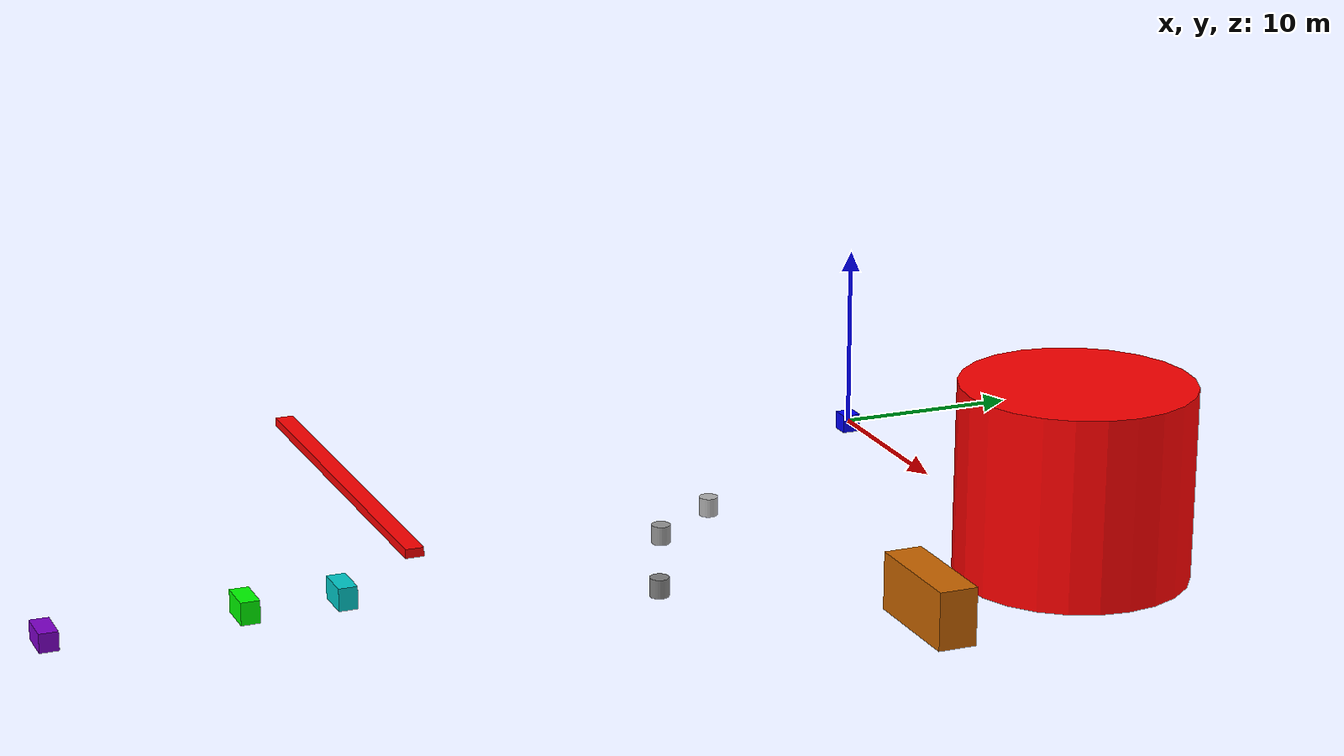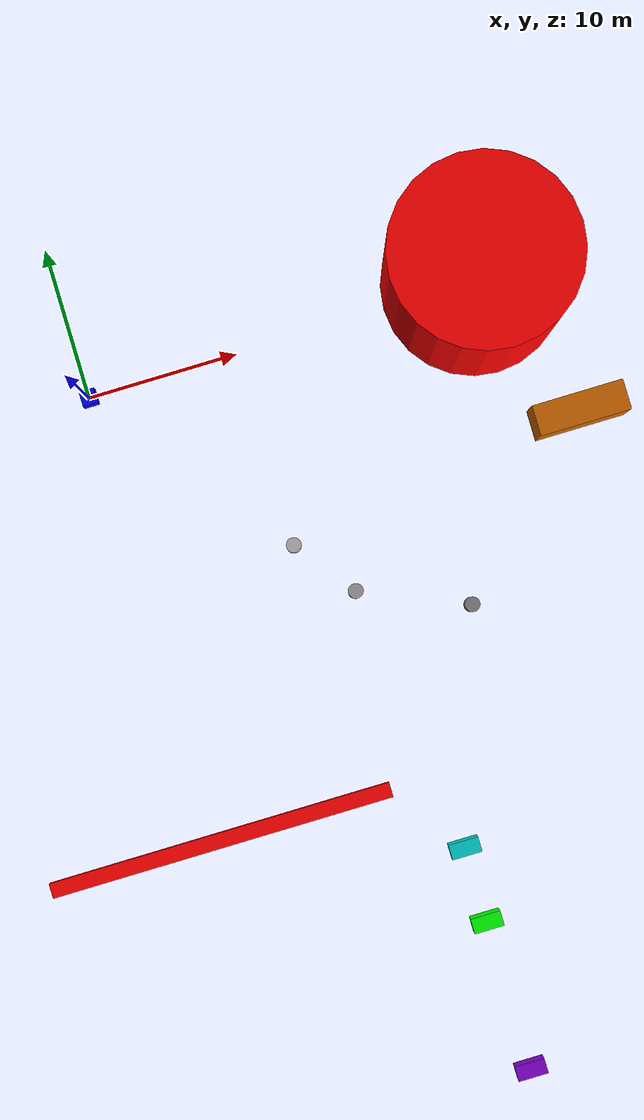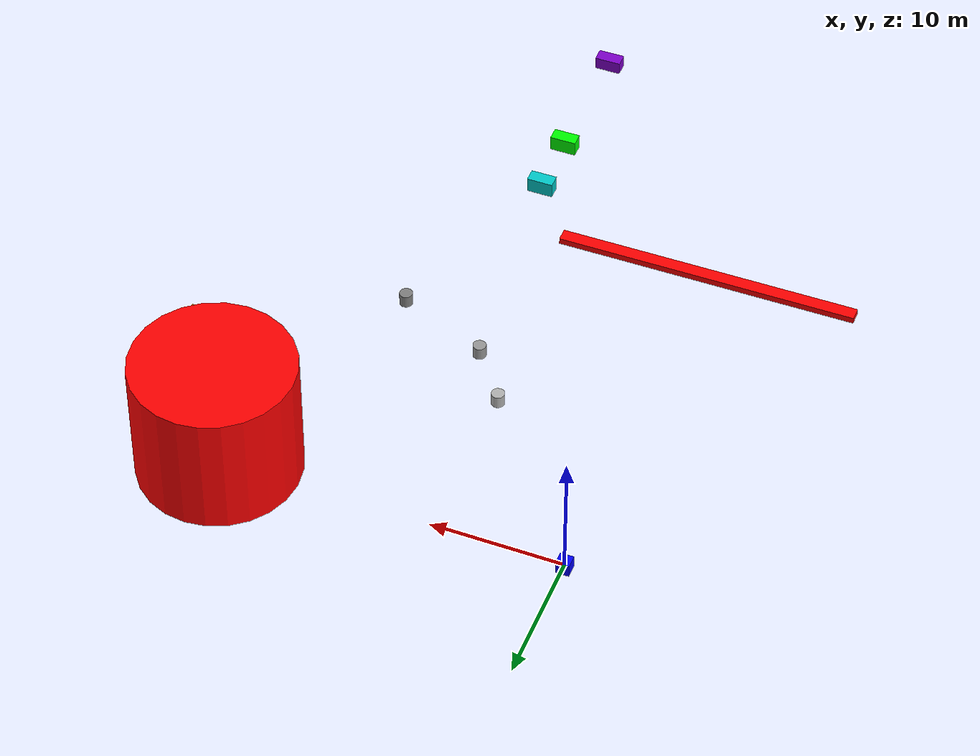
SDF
<?xml version="1.0" ?>
<sdf version="1.8">
    <world name="3d_world">
        <physics name="1ms" type="ode">
            <max_step_size>0.001</max_step_size>
            <real_time_factor>1.0</real_time_factor>
            <real_time_update_rate>1000.0</real_time_update_rate>
        </physics>
        <gravity>0 0 0</gravity> <!-- World-level gravity disabled -->

        <plugin
            filename="gz-sim-physics-system"
            name="gz::sim::v8::systems::Physics">
        </plugin>
        <plugin
            filename="libignition-gazebo-user-commands-system.so"
            name="ignition::gazebo::systems::UserCommands">
        </plugin>
        <plugin
            filename="gz-sim-scene-broadcaster-system"
            name="gz::sim::systems::SceneBroadcaster">
        </plugin>
        <!-- Add the Sensors system plugin -->
        <plugin
            filename="gz-sim-sensors-system"
            name="gz::sim::systems::Sensors">
            <render_engine>ogre2</render_engine>
        </plugin>

        <light type="directional" name="sun">
            <cast_shadows>true</cast_shadows>
            <pose>0 0 10 0 0 0</pose>
            <diffuse>0.8 0.8 0.8 1</diffuse>
            <specular>0.2 0.2 0.2 1</specular>
            <attenuation>
                <range>1000</range>
                <constant>0.9</constant>
                <linear>0.01</linear>
                <quadratic>0.001</quadratic>
            </attenuation>
            <direction>-0.5 0.1 -0.9</direction>
        </light>

        <!--!AGENTE -->
        <model name='agente' canonical_link='chassis'>
            <pose relative_to='world'>0.0 0 0.0 0 0 0</pose> <!-- Starting at origin -->
            <link name='chassis'>
                <pose relative_to='__model__'>0.0 0 0.0 0 0 0</pose> <!-- Match the dynamic file positioning -->
                <inertial>
                    <mass>1.14395</mass>
                    <inertia>
                        <ixx>0.095329</ixx>
                        <ixy>0</ixy>
                        <ixz>0</ixz>
                        <iyy>0.381317</iyy>
                        <iyz>0</iyz>
                        <izz>0.476646</izz>
                    </inertia>
                </inertial>
                <visual name='visual'>
                    <geometry>
                        <box>
                            <size>1.0 1.0 1.0</size>
                        </box>
                    </geometry>
                    <material>
                        <ambient>0.0 0.0 1.0 1</ambient>
                        <diffuse>0.0 0.0 1.0 1</diffuse>
                        <specular>0.0 0.0 1.0 1</specular>
                    </material>
                </visual>
                <collision name='collision'>
                    <geometry>
                        <box>
                            <size>1.0 1.0 1.0</size>
                        </box>
                    </geometry>
                </collision>
                <enable_gravity>false</enable_gravity>
            </link>

            <!-- LiDAR link -->
            <link name='lidar_link'>
                <pose relative_to='chassis'>0.0 0 0.5 0 0 0</pose>
                <inertial>
                    <mass>0.1</mass>
                    <inertia>
                        <ixx>0.000166667</ixx>
                        <iyy>0.000166667</iyy>
                        <izz>0.000166667</izz>
                    </inertia>
                </inertial>
                <collision name='collision'>
                    <geometry>
                        <cylinder>
                            <radius>0.05</radius>
                            <length>0.1</length>
                        </cylinder>
                    </geometry>
                </collision>
                <visual name='visual'>
                    <geometry>
                        <cylinder>
                            <radius>0.05</radius>
                            <length>0.1</length>
                        </cylinder>
                    </geometry>
                    <material>
                        <ambient>0.0 1.0 0.0 1</ambient>
                        <diffuse>0.0 1.0 0.0 1</diffuse>
                        <specular>0.0 1.0 0.0 1</specular>
                    </material>
                </visual>
                <sensor name="lidar" type="gpu_lidar">
                    <topic>scan</topic>
                    <update_rate>10</update_rate>
                    <lidar>
                        <scan>
                            <horizontal>
                                <samples>5000</samples>
                                <resolution>1</resolution>
                                <min_angle>-3.14159</min_angle>
                                <max_angle>3.14159</max_angle>
                            </horizontal>
                        </scan>
                        <range>
                            <min>0.1</min>
                            <max>50.0</max>
                            <resolution>0.01</resolution>
                        </range>
                    </lidar>
                    <visualize>true</visualize>
                    <always_on>true</always_on>
                    <update_rate>10</update_rate>
                    <pose_frame>lidar</pose_frame>

                </sensor>
                <enable_gravity>false</enable_gravity>
            </link>

            <!-- Joint to connect LiDAR to chassis -->
            <joint name="lidar_joint" type="fixed">
                <parent>chassis</parent>
                <child>lidar_link</child>
            </joint>

            <!-- plugin to publish-->
            <plugin
                filename="ignition-gazebo-joint-state-publisher-system"
                name="ignition::gazebo::systems::JointStatePublisher">
            </plugin>

            <plugin
                filename="ignition-gazebo-odometry-publisher-system"
                name="ignition::gazebo::systems::OdometryPublisher">
                <dimensions>3</dimensions>
            </plugin>

            <plugin
                filename="ignition-gazebo-velocity-control-system"
                name="ignition::gazebo::systems::VelocityControl">
                <initial_linear>0.0 0 0</initial_linear>
                <initial_angular>0 0 0.0</initial_angular>
            </plugin>

            <plugin
                filename="libignition-gazebo-pose-publisher-system.so"
                name="ignition::gazebo::systems::PosePublisher">
                <topic>/agente/pose</topic>
                <frame_id>agente</frame_id>
                <update_rate>30</update_rate>
            </plugin>
        </model>

        <!-- !OBSTACULO 1 (Rectangle: 23m x 1m x 0.5m, centered at x=0, y=-30) -->
        <model name='obstacle_1' canonical_link='obstacle'>
            <static>false</static>
            <pose relative_to='world'>0.0 -30.0 0.25 0 0 0</pose> <!-- z=0.25 so bottom is at z=0, top at z=0.5 -->
            <link name='obstacle'>
                <pose relative_to='__model__'>0.0 0 0.0 0 0 0</pose>
                <inertial>
                    <mass>100.0</mass>
                    <inertia>
                        <ixx>10.42</ixx>
                        <ixy>0</ixy>
                        <ixz>0</ixz>
                        <iyy>4410.42</iyy>
                        <iyz>0</iyz>
                        <izz>4416.67</izz>
                    </inertia>
                </inertial>
                <visual name='visual'>
                    <geometry>
                        <box>
                            <size>23.0 1.0 0.5</size> <!-- length x width x height -->
                        </box>
                    </geometry>
                    <material>
                        <ambient>1.0 0.0 0.0 1</ambient>
                        <diffuse>1.0 0.0 0.0 1</diffuse>
                        <specular>1.0 0.0 0.0 1</specular>
                    </material>
                </visual>
                <collision name='collision'>
                    <geometry>
                        <box>
                            <size>23.0 1.0 0.5</size>
                        </box>
                    </geometry>
                </collision>
                <enable_gravity>false</enable_gravity>
            </link>

            <plugin
                filename="ignition-gazebo-velocity-control-system"
                name="ignition::gazebo::systems::VelocityControl">
                <initial_linear>0.0 0 0</initial_linear>
                <initial_angular>0 0 0.0</initial_angular>
            </plugin>

            <plugin
                filename="ignition-gazebo-odometry-publisher-system"
                name="ignition::gazebo::systems::OdometryPublisher">
                <dimensions>3</dimensions>
            </plugin>
        </model>

        <!-- !OBSTACULO 2 (Cylinder: radius 6m, height 10m, centered at x=26, y=0) -->
        <model name='obstacle_2' canonical_link='obstacle'>
            <static>false</static>
            <pose relative_to='world'>26.0 0.0 5.0 0 0 0</pose> <!-- z=5.0 so bottom is at z=0, top at z=10 -->
            <link name='obstacle'>
                <pose relative_to='__model__'>0.0 0 0.0 0 0 0</pose>
                <inertial>
                    <mass>200.0</mass>
                    <inertia>
                        <ixx>3466.67</ixx>
                        <ixy>0</ixy>
                        <ixz>0</ixz>
                        <iyy>3466.67</iyy>  <!-- Same as ixx for cylinder -->
                        <iyz>0</iyz>
                        <izz>3600.0</izz>
                    </inertia>
                </inertial>
                <visual name='visual'>
                    <geometry>
                        <cylinder>
                            <radius>6.0</radius>
                            <length>10.0</length> <!-- height -->
                        </cylinder>
                    </geometry>
                    <material>
                        <ambient>1.0 0.0 0.0 1</ambient>
                        <diffuse>1.0 0.0 0.0 1</diffuse>
                        <specular>1.0 0.0 0.0 1</specular>
                    </material>
                </visual>
                <collision name='collision'>
                    <geometry>
                        <cylinder>
                            <radius>6.0</radius>
                            <length>10.0</length>
                        </cylinder>
                    </geometry>
                </collision>
                <enable_gravity>false</enable_gravity>
            </link>

            <plugin
                filename="ignition-gazebo-velocity-control-system"
                name="ignition::gazebo::systems::VelocityControl">
                <initial_linear>0.0 0 0</initial_linear>
                <initial_angular>0 0 0.5</initial_angular>
            </plugin>

            <plugin
                filename="ignition-gazebo-odometry-publisher-system"
                name="ignition::gazebo::systems::OdometryPublisher">
                <dimensions>3</dimensions>
            </plugin>
        </model>

        <!-- !OBSTACULO 3 (Orange - Moving Rectangle) -->
        <model name='obstacle_3' canonical_link='obstacle'>
            <static>false</static>
            <pose relative_to='world'>30.0 -10.0 1.5 0 0 0</pose> <!-- z=1.5 for 3m height -->
            <link name='obstacle'>
                <pose relative_to='__model__'>0.0 0 0.0 0 0 0</pose>
                <inertial>
                    <mass>20.0</mass>
                    <inertia>
                        <ixx>15.01</ixx>
                        <ixy>0</ixy>
                        <ixz>0</ixz>
                        <iyy>60.67</iyy>
                        <iyz>0</iyz>
                        <izz>60.07</izz>
                    </inertia>
                </inertial>
                <visual name='visual'>
                    <geometry>
                        <box>
                            <size>6.0 2 3.0</size> <!-- length x width x height -->
                        </box>
                    </geometry>
                    <material>
                        <ambient>0.8 0.4 0.0 1</ambient> <!-- Orange -->
                        <diffuse>0.8 0.4 0.0 1</diffuse>
                        <specular>0.8 0.4 0.0 1</specular>
                    </material>
                </visual>
                <collision name='collision'>
                    <geometry>
                        <box>
                            <size>6.0 2 3.0</size>
                        </box>
                    </geometry>
                </collision>
                <enable_gravity>false</enable_gravity>
            </link>

            <plugin
                filename="ignition-gazebo-velocity-control-system"
                name="ignition::gazebo::systems::VelocityControl">
                <initial_linear>-1.0 0.0 0</initial_linear> <!-- Negative X movement -->
                <initial_angular>0 0 0.0</initial_angular>
            </plugin>

            <plugin
                filename="ignition-gazebo-odometry-publisher-system"
                name="ignition::gazebo::systems::OdometryPublisher">
                <dimensions>3</dimensions>
            </plugin>
        </model>

        <!-- !OBSTACULO 4 (Purple - Moving Rectangle) -->
        <model name='obstacle_4' canonical_link='obstacle'>
            <static>false</static>
            <pose relative_to='world'>15.0 -50.0 0.1 0 0 0</pose> <!-- z=0.1 for 0.2m height -->
            <link name='obstacle'>
                <pose relative_to='__model__'>0.0 0 0.0 0 0 0</pose>
                <inertial>
                    <mass>10.0</mass>
                    <inertia>
                        <ixx>0.87</ixx>
                        <ixy>0</ixy>
                        <ixz>0</ixz>
                        <iyy>3.37</iyy>
                        <iyz>0</iyz>
                        <izz>4.17</izz>
                    </inertia>
                </inertial>
                <visual name='visual'>
                    <geometry>
                        <box>
                            <size>2.0 1.0 1.0</size> <!-- length x width x height -->
                        </box>
                    </geometry>
                    <material>
                        <ambient>0.5 0.0 0.8 1</ambient> <!-- Purple -->
                        <diffuse>0.5 0.0 0.8 1</diffuse>
                        <specular>0.5 0.0 0.8 1</specular>
                    </material>
                </visual>
                <collision name='collision'>
                    <geometry>
                        <box>
                            <size>2.0 1.0 1.0</size>
                        </box>
                    </geometry>
                </collision>
                <enable_gravity>false</enable_gravity>
            </link>

            <plugin
                filename="ignition-gazebo-velocity-control-system"
                name="ignition::gazebo::systems::VelocityControl">
                <initial_linear>0.0 1.0 0</initial_linear> <!-- Positive Y movement -->
                <initial_angular>0 0 0.0</initial_angular>
            </plugin>

            <plugin
                filename="ignition-gazebo-odometry-publisher-system"
                name="ignition::gazebo::systems::OdometryPublisher">
                <dimensions>3</dimensions>
            </plugin>
        </model>

        <!-- !OBSTACULO 5 (Cyan - Moving Rectangle) -->
        <model name='obstacle_5' canonical_link='obstacle'>
            <static>false</static>
            <pose relative_to='world'>15.0 -35.0 0.1 0 0 0</pose> <!-- z=0.1 for 0.2m height -->
            <link name='obstacle'>
                <pose relative_to='__model__'>0.0 0 0.0 0 0 0</pose>
                <inertial>
                    <mass>10.0</mass>
                    <inertia>
                        <ixx>0.87</ixx>
                        <ixy>0</ixy>
                        <ixz>0</ixz>
                        <iyy>3.37</iyy>
                        <iyz>0</iyz>
                        <izz>4.17</izz>
                    </inertia>
                </inertial>
                <visual name='visual'>
                    <geometry>
                        <box>
                            <size>2.0 1.0 1.2</size> <!-- length x width x height -->
                        </box>
                    </geometry>
                    <material>
                        <ambient>0.0 0.8 0.8 1</ambient> <!-- Cyan -->
                        <diffuse>0.0 0.8 0.8 1</diffuse>
                        <specular>0.0 0.8 0.8 1</specular>
                    </material>
                </visual>
                <collision name='collision'>
                    <geometry>
                        <box>
                            <size>2.0 1.0 0.2</size>
                        </box>
                    </geometry>
                </collision>
                <enable_gravity>false</enable_gravity>
            </link>

            <plugin
                filename="ignition-gazebo-velocity-control-system"
                name="ignition::gazebo::systems::VelocityControl">
                <initial_linear>0.0 1.0 0</initial_linear> <!-- Positive Y movement -->
                <initial_angular>0 0 0.0</initial_angular>
            </plugin>

            <plugin
                filename="ignition-gazebo-odometry-publisher-system"
                name="ignition::gazebo::systems::OdometryPublisher">
                <dimensions>3</dimensions>
            </plugin>
        </model>

        <!-- !OBSTACULO 6 (Green - Moving Rectangle) -->
        <model name='obstacle_6' canonical_link='obstacle'>
            <static>false</static>
            <pose relative_to='world'>15.0 -40.0 0.1 0 0 0</pose> <!-- z=0.1 for 0.2m height -->
            <link name='obstacle'>
                <pose relative_to='__model__'>0.0 0 0.0 0 0 0</pose>
                <inertial>
                    <mass>10.0</mass>
                    <inertia>
                        <ixx>0.87</ixx>
                        <ixy>0</ixy>
                        <ixz>0</ixz>
                        <iyy>3.37</iyy>
                        <iyz>0</iyz>
                        <izz>4.17</izz>
                    </inertia>
                </inertial>
                <visual name='visual'>
                    <geometry>
                        <box>
                            <size>2.0 1.0 1.2</size> <!-- length x width x height -->
                        </box>
                    </geometry>
                    <material>
                        <ambient>0.0 1.0 0.0 1</ambient> <!-- Green -->
                        <diffuse>0.0 1.0 0.0 1</diffuse>
                        <specular>0.0 1.0 0.0 1</specular>
                    </material>
                </visual>
                <collision name='collision'>
                    <geometry>
                        <box>
                            <size>2.0 1.0 0.2</size>
                        </box>
                    </geometry>
                </collision>
                <enable_gravity>false</enable_gravity>
            </link>

            <plugin
                filename="ignition-gazebo-velocity-control-system"
                name="ignition::gazebo::systems::VelocityControl">
                <initial_linear>0.0 1.0 0</initial_linear> <!-- Positive Y movement -->
                <initial_angular>0 0 0.0</initial_angular>
            </plugin>

            <plugin
                filename="ignition-gazebo-odometry-publisher-system"
                name="ignition::gazebo::systems::OdometryPublisher">
                <dimensions>3</dimensions>
            </plugin>
        </model>

        <!-- !OBSTACULO 7 (Static Cylinder) -->
        <model name='obstacle_7' canonical_link='obstacle'>
            <static>true</static>
            <pose relative_to='world'>10.0 -13.0 0 0 0 0</pose> <!-- x=-y, z=1.5 for 3m height -->
            <link name='obstacle'>
                <pose relative_to='__model__'>0.0 0 0.0 0 0 0</pose>
                <inertial>
                    <mass>15.0</mass>
                    <inertia>
                        <ixx>11.44</ixx>
                        <ixy>0</ixy>
                        <ixz>0</ixz>
                        <iyy>11.44</iyy>   <!-- Same as ixx for cylinder -->
                        <iyz>0</iyz>
                        <izz>1.875</izz>
                    </inertia>
                </inertial>
                <visual name='visual'>
                    <geometry>
                        <cylinder>
                            <radius>0.5</radius> <!-- 1m diameter = 0.5m radius -->
                            <length>1.0</length> <!-- height -->
                        </cylinder>
                    </geometry>
                    <material>
                        <ambient>0.7 0.7 0.7 1</ambient> <!-- Gray -->
                        <diffuse>0.7 0.7 0.7 1</diffuse>
                        <specular>0.7 0.7 0.7 1</specular>
                    </material>
                </visual>
                <collision name='collision'>
                    <geometry>
                        <cylinder>
                            <radius>0.5</radius>
                            <length>1.0</length>
                        </cylinder>
                    </geometry>
                </collision>
                <enable_gravity>false</enable_gravity>
            </link>
        </model>

        <!-- !OBSTACULO 8 (Static Cylinder) -->
        <model name='obstacle_8' canonical_link='obstacle'>
            <static>true</static>
            <pose relative_to='world'>13.0 -17.0 0 0 0 0</pose> <!-- x=-y, z=1.5 for 3m height -->
            <link name='obstacle'>
                <pose relative_to='__model__'>0.0 0 0.0 0 0 0</pose>
                <inertial>
                    <mass>15.0</mass>
                    <inertia>
                        <ixx>11.44</ixx>
                        <ixy>0</ixy>
                        <ixz>0</ixz>
                        <iyy>11.44</iyy>   <!-- Same as ixx for cylinder -->
                        <iyz>0</iyz>
                        <izz>1.875</izz>
                    </inertia>
                </inertial>
                <visual name='visual'>
                    <geometry>
                        <cylinder>
                            <radius>0.5</radius> <!-- 1m diameter = 0.5m radius -->
                            <length>1.0</length> <!-- height -->
                        </cylinder>
                    </geometry>
                    <material>
                        <ambient>0.6 0.6 0.6 1</ambient> <!-- Darker Gray -->
                        <diffuse>0.6 0.6 0.6 1</diffuse>
                        <specular>0.6 0.6 0.6 1</specular>
                    </material>
                </visual>
                <collision name='collision'>
                    <geometry>
                        <cylinder>
                            <radius>0.5</radius>
                            <length>1.0</length>
                        </cylinder>
                    </geometry>
                </collision>
                <enable_gravity>false</enable_gravity>
            </link>
        </model>

        <!-- !OBSTACULO 9 (Static Cylinder) -->
        <model name='obstacle_9' canonical_link='obstacle'>
            <static>true</static>
            <pose relative_to='world'>20.0 -20.0 0 0 0 0</pose> <!-- x=-y, z=1.5 for 3m height -->
            <link name='obstacle'>
                <pose relative_to='__model__'>0.0 0 0.0 0 0 0</pose>
                <inertial>
                    <mass>15.0</mass>
                    <inertia>
                        <ixx>11.44</ixx>
                        <ixy>0</ixy>
                        <ixz>0</ixz>
                        <iyy>11.44</iyy>   <!-- Same as ixx for cylinder -->
                        <iyz>0</iyz>
                        <izz>1.875</izz>
                    </inertia>
                </inertial>
                <visual name='visual'>
                    <geometry>
                        <cylinder>
                            <radius>0.5</radius> <!-- 1m diameter = 0.5m radius -->
                            <length>1.0</length> <!-- height -->
                        </cylinder>
                    </geometry>
                    <material>
                        <ambient>0.5 0.5 0.5 1</ambient> <!-- Dark Gray -->
                        <diffuse>0.5 0.5 0.5 1</diffuse>
                        <specular>0.5 0.5 0.5 1</specular>
                    </material>
                </visual>
                <collision name='collision'>
                    <geometry>
                        <cylinder>
                            <radius>0.5</radius>
                            <length>3.0</length>
                        </cylinder>
                    </geometry>
                </collision>
                <enable_gravity>false</enable_gravity>
            </link>
        </model>

    </world>
</sdf>
